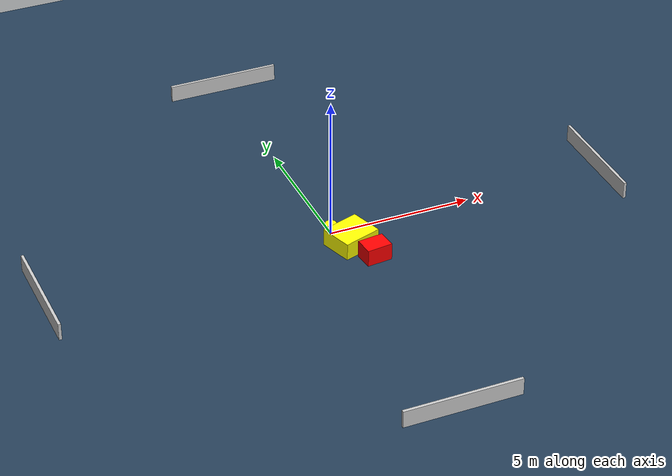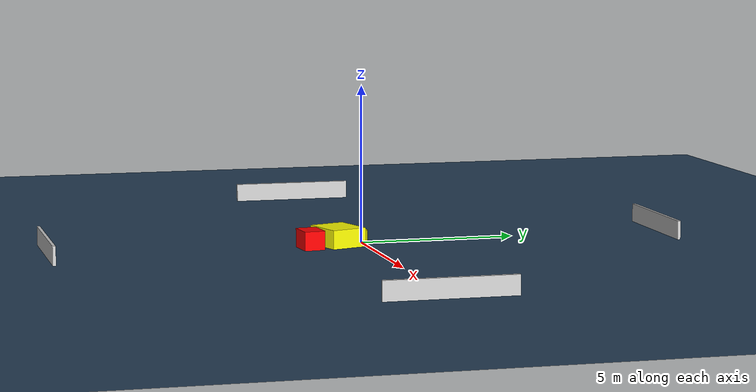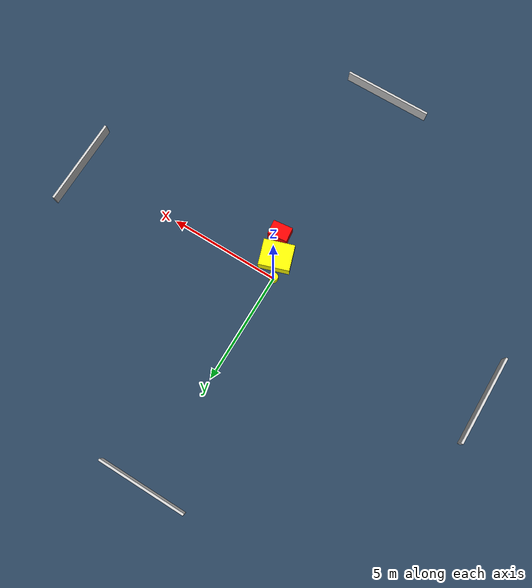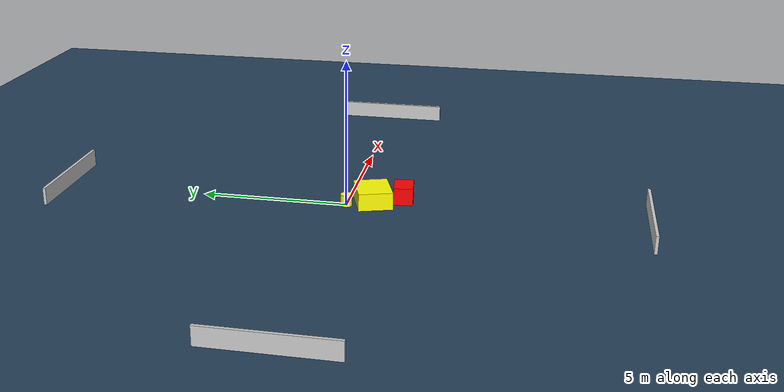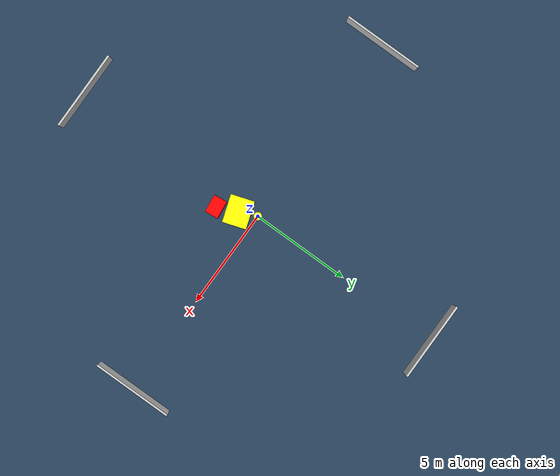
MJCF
<?xml version="1.0" ?>
<mujoco model="generated_environment">
  <option timestep="0.01" integrator="RK4" cone="elliptic"/>
  <default>
    <geom density="1"/>
  </default>
  <asset>
    <texture builtin="gradient" height="3072" name="skybox" rgb1="0.3 0.5 0.7" rgb2="0 0 0" type="skybox" width="512"/>
    <texture builtin="checker" height="300" name="groundplane" rgb1="0.2 0.3 0.4" rgb2="0.1 0.2 0.3" type="2d" width="300"/>
    <material name="groundplane" reflectance="0.2" texrepeat="5 5" texture="groundplane"/>
  </asset>
  <worldbody>
    <light dir="0 0 -1" directional="true" pos="0 0 1.5"/>
    <geom condim="3" friction="0.5 0.005 0.001" material="groundplane" name="floor" pos="0 0 0" size="0 0 0.05" type="plane"/>
    <body name="walls">
      <geom name="wall_1" condim="4" pos="-10.0 0.0 0.3" rgba="0.800000011920929 0.800000011920929 0.800000011920929 1.0" size="0.05 2.0 0.3" type="box"/>
      <geom name="wall_2" condim="4" pos="10.0 0.0 0.3" rgba="0.800000011920929 0.800000011920929 0.800000011920929 1.0" size="0.05 2.0 0.3" type="box"/>
      <geom name="wall_3" condim="4" pos="0.0 -10.0 0.3" rgba="0.800000011920929 0.800000011920929 0.800000011920929 1.0" size="2.0 0.05 0.3" type="box"/>
      <geom name="wall_4" condim="4" pos="0.0 10.0 0.3" rgba="0.800000011920929 0.800000011920929 0.800000011920929 1.0" size="2.0 0.05 0.3" type="box"/>
    </body>
    <body name="robot">
      <joint name="joint_x" type="slide" pos="0 0 0" axis="1 0 0"/>
      <joint name="joint_y" type="slide" pos="0 0 0" axis="0 1 0"/>
      <geom name="robot" type="cylinder" pos="0.0 0.0 0.2" size="0.2 0.2 0.0" mass="5.0" friction="1.0 0.005 0.0001" condim="4" rgba="1.0 1.0 0.0 1.0"/>
    </body>
    <body name="obstacle_1_movable">
      <geom name="obstacle_1_movable" condim="4" pos="0.3615454913617303 -0.8499805654228991 0.3" euler="0 0 108.11454206587287" friction="0.0 0.005 0.001" rgba="1.0 1.0 0.0 1.0" size="0.5856915014421944 0.6872458383100664 0.3" type="box" mass="0.1"/>
      <joint type="free"/>
    </body>
    <body name="obstacle_2_static">
      <geom name="obstacle_2_static" condim="4" pos="0.7817333506060269 -1.8408807665232338 0.3" euler="0 0 276.156265664098" friction="0.0 0.005 0.001" rgba="1.0 0.0 0.0 1.0" size="0.3311538594307458 0.44495701560912637 0.3" type="box"/>
    </body>
  </worldbody>
  <actuator>
    <motor name="actuator_x" joint="joint_x" gear="1" ctrlrange="-1 1"/>
    <motor name="actuator_y" joint="joint_y" gear="1" ctrlrange="-1 1"/>
  </actuator>
</mujoco>
